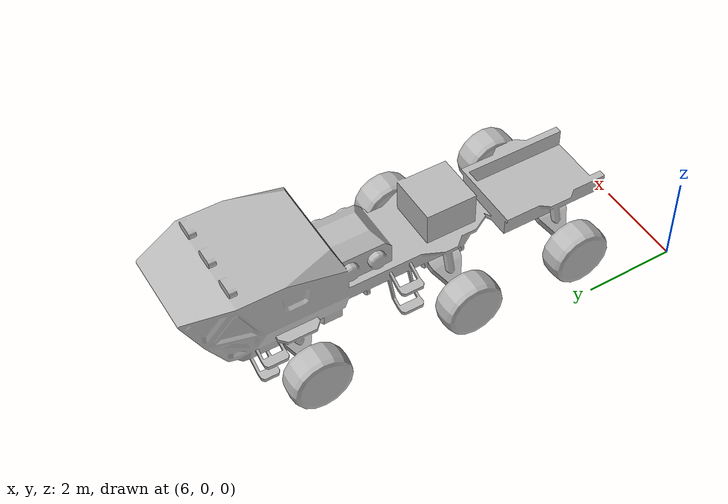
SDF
<sdf version="1.6">
 <world name="SRC_finals">
  <include>
   <pose>8.21084699580533
        6.340805954908925
        0
        0
        0
        3.1415926535897927</pose>
   <uri>model://mars_explorer</uri>
  </include>
 </world>
</sdf>
